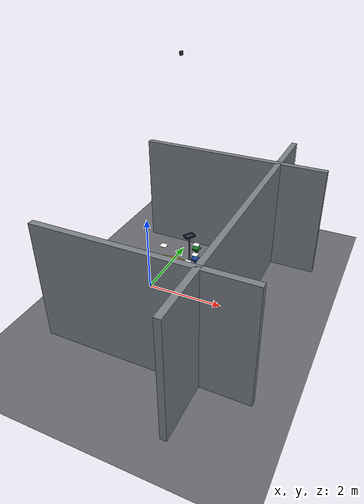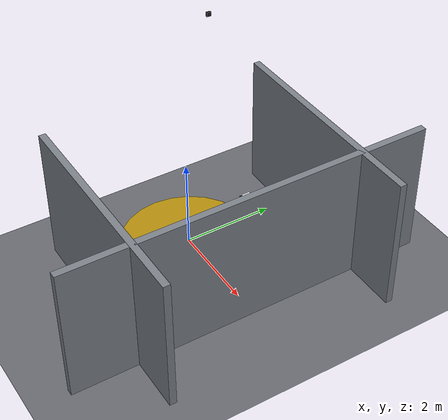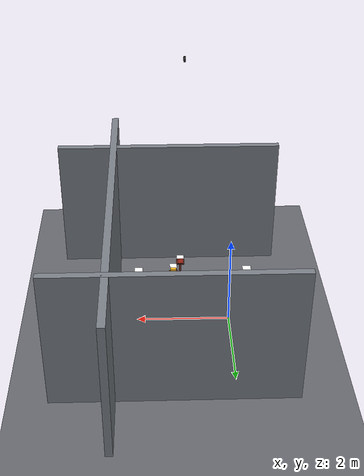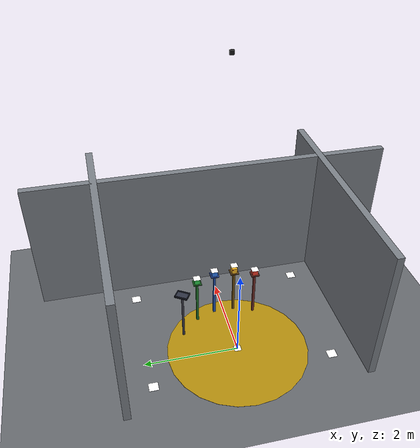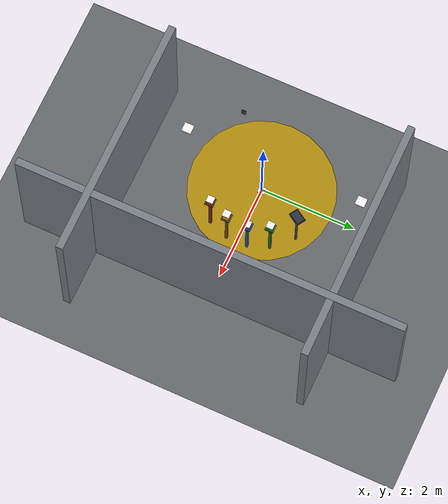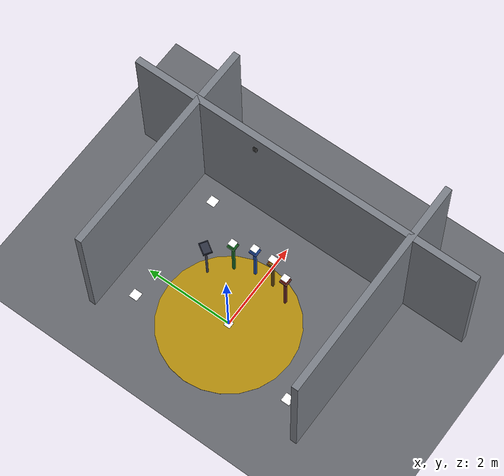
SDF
<?xml version="1.0" ?>
<sdf version="1.8">
  <world name="inventory_world">

    <physics name="fast" type="ignored">
      <max_step_size>0.004</max_step_size>
      <real_time_factor>1.0</real_time_factor>
      <real_time_update_rate>250</real_time_update_rate>
    </physics>

    <plugin filename="gz-sim-physics-system"           name="gz::sim::systems::Physics"/>
    <plugin filename="gz-sim-user-commands-system"     name="gz::sim::systems::UserCommands"/>
    <plugin filename="gz-sim-scene-broadcaster-system" name="gz::sim::systems::SceneBroadcaster"/>
    <plugin filename="gz-sim-contact-system"           name="gz::sim::systems::Contact"/>
    <plugin filename="gz-sim-sensors-system"           name="gz::sim::systems::Sensors">
      <render_engine>ogre2</render_engine>
    </plugin>

    <scene>
      <ambient>1.0 1.0 1.0 1</ambient>
      <background>0.15 0.17 0.21 1</background>
      <shadows>false</shadows>
      <grid>false</grid>
    </scene>

    <light name="sun_top" type="directional">
      <cast_shadows>false</cast_shadows><pose>0 0 10 0 0 0</pose>
      <diffuse>1.0 1.0 1.0 1</diffuse><specular>0.1 0.1 0.1 1</specular>
      <direction>0 0 -1</direction><intensity>1.5</intensity>
    </light>
    <light name="fill_front" type="directional">
      <cast_shadows>false</cast_shadows><pose>0 0 6 0 0.5 0</pose>
      <diffuse>0.8 0.8 0.8 1</diffuse><specular>0 0 0 1</specular>
      <direction>1 0 -1</direction>
    </light>
    <light name="fill_arm" type="directional">
      <cast_shadows>false</cast_shadows><pose>-1 0 4 0 0.5 0</pose>
      <diffuse>0.6 0.6 0.6 1</diffuse><specular>0 0 0 1</specular>
      <direction>1 0 -1</direction>
    </light>

    <!-- ═══ CAMERA 5.0 m ═══════════════════════════════════════════ -->
    <model name="overhead_camera_mount">
      <static>true</static><pose>1.0 0 6.0 0 1.5707963 0</pose>
      <link name="link">
        <visual name="body">
          <geometry><box><size>0.08 0.08 0.04</size></box></geometry>
          <material><ambient>0.1 0.1 0.1 1</ambient></material>
        </visual>
        <sensor name="overhead_cam" type="camera">
          <camera>
            <horizontal_fov>1.3963</horizontal_fov>
            <image><width>1280</width><height>720</height><format>R8G8B8</format></image>
            <clip><near>0.1</near><far>30.0</far></clip>
            <distortion><k1>0</k1><k2>0</k2><k3>0</k3><p1>0</p1><p2>0</p2></distortion>
          </camera>
          <always_on>1</always_on><update_rate>20</update_rate>
          <visualize>false</visualize><topic>/gz/camera/image</topic>
        </sensor>
      </link>
    </model>

    <!-- ═══ REFERENCE MARKERS (IDs 1-4, 200×200 mm) ═══════════════ -->
    <model name="aruco_ref_1"><static>true</static><pose>-0.60 -1.90 0.002 0 0 0</pose>
      <link name="link"><visual name="v"><cast_shadows>false</cast_shadows>
        <geometry><box><size>0.20 0.20 0.003</size></box></geometry>
        <material><ambient>1 1 1 1</ambient><diffuse>1 1 1 1</diffuse><specular>0 0 0 1</specular>
          <pbr><metal><albedo_map>model://dexter_description/textures/aruco_1.png</albedo_map>
            <metalness>0.0</metalness><roughness>1.0</roughness></metal></pbr>
        </material></visual></link></model>

    <model name="aruco_ref_2"><static>true</static><pose>2.00 -1.90 0.002 0 0 0</pose>
      <link name="link"><visual name="v"><cast_shadows>false</cast_shadows>
        <geometry><box><size>0.20 0.20 0.003</size></box></geometry>
        <material><ambient>1 1 1 1</ambient><diffuse>1 1 1 1</diffuse><specular>0 0 0 1</specular>
          <pbr><metal><albedo_map>model://dexter_description/textures/aruco_2.png</albedo_map>
            <metalness>0.0</metalness><roughness>1.0</roughness></metal></pbr>
        </material></visual></link></model>

    <model name="aruco_ref_3"><static>true</static><pose>-0.60 1.90 0.002 0 0 0</pose>
      <link name="link"><visual name="v"><cast_shadows>false</cast_shadows>
        <geometry><box><size>0.20 0.20 0.003</size></box></geometry>
        <material><ambient>1 1 1 1</ambient><diffuse>1 1 1 1</diffuse><specular>0 0 0 1</specular>
          <pbr><metal><albedo_map>model://dexter_description/textures/aruco_3.png</albedo_map>
            <metalness>0.0</metalness><roughness>1.0</roughness></metal></pbr>
        </material></visual></link></model>

    <model name="aruco_ref_4"><static>true</static><pose>2.00 1.90 0.002 0 0 0</pose>
      <link name="link"><visual name="v"><cast_shadows>false</cast_shadows>
        <geometry><box><size>0.20 0.20 0.003</size></box></geometry>
        <material><ambient>1 1 1 1</ambient><diffuse>1 1 1 1</diffuse><specular>0 0 0 1</specular>
          <pbr><metal><albedo_map>model://dexter_description/textures/aruco_4.png</albedo_map>
            <metalness>0.0</metalness><roughness>1.0</roughness></metal></pbr>
        </material></visual></link></model>

    <!-- ═══ ARM BASE floor marker (ID 5) ═══════════════════════════ -->
    <model name="aruco_arm_base_5"><static>true</static><pose>0.0 0.0 0.002 0 0 0</pose>
      <link name="link"><visual name="v"><cast_shadows>false</cast_shadows>
        <geometry><box><size>0.15 0.15 0.003</size></box></geometry>
        <material><ambient>1 1 1 1</ambient><diffuse>1 1 1 1</diffuse><specular>0 0 0 1</specular>
          <pbr><metal><albedo_map>model://dexter_description/textures/aruco_5.png</albedo_map>
            <metalness>0.0</metalness><roughness>1.0</roughness></metal></pbr>
        </material></visual></link></model>

    <!-- ═══ BOX-TOP MARKERS (IDs 10-13, 150×150 mm) ═══════════════ -->
    <model name="aruco_box_10"><static>true</static><pose>1.048 -0.642 1.218 0 0 0</pose>
      <link name="link"><visual name="v"><cast_shadows>false</cast_shadows>
        <geometry><box><size>0.15 0.15 0.002</size></box></geometry>
        <material><ambient>1 1 1 1</ambient><diffuse>1 1 1 1</diffuse><specular>0 0 0 1</specular>
          <pbr><metal><albedo_map>model://dexter_description/textures/aruco_10.png</albedo_map>
            <metalness>0.0</metalness><roughness>1.0</roughness></metal></pbr>
        </material></visual></link></model>

    <model name="aruco_box_11"><static>true</static><pose>1.209 -0.220 1.280 0 0 0</pose>
      <link name="link"><visual name="v"><cast_shadows>false</cast_shadows>
        <geometry><box><size>0.15 0.15 0.002</size></box></geometry>
        <material><ambient>1 1 1 1</ambient><diffuse>1 1 1 1</diffuse><specular>0 0 0 1</specular>
          <pbr><metal><albedo_map>model://dexter_description/textures/aruco_11.png</albedo_map>
            <metalness>0.0</metalness><roughness>1.0</roughness></metal></pbr>
        </material></visual></link></model>

    <model name="aruco_box_12"><static>true</static><pose>1.209 0.220 1.218 0 0 0</pose>
      <link name="link"><visual name="v"><cast_shadows>false</cast_shadows>
        <geometry><box><size>0.15 0.15 0.002</size></box></geometry>
        <material><ambient>1 1 1 1</ambient><diffuse>1 1 1 1</diffuse><specular>0 0 0 1</specular>
          <pbr><metal><albedo_map>model://dexter_description/textures/aruco_12.png</albedo_map>
            <metalness>0.0</metalness><roughness>1.0</roughness></metal></pbr>
        </material></visual></link></model>

    <model name="aruco_box_13"><static>true</static><pose>1.048 0.642 1.218 0 0 0</pose>
      <link name="link"><visual name="v"><cast_shadows>false</cast_shadows>
        <geometry><box><size>0.15 0.15 0.002</size></box></geometry>
        <material><ambient>1 1 1 1</ambient><diffuse>1 1 1 1</diffuse><specular>0 0 0 1</specular>
          <pbr><metal><albedo_map>model://dexter_description/textures/aruco_13.png</albedo_map>
            <metalness>0.0</metalness><roughness>1.0</roughness></metal></pbr>
        </material></visual></link></model>

    <!-- ═══ FLOOR ═══════════════════════════════════════════════════ -->
    <model name="warehouse_floor"><static>true</static><pose>0 0 0 0 0 0</pose>
      <link name="link">
        <collision name="col"><geometry><plane><normal>0 0 1</normal><size>10 10</size></plane></geometry></collision>
        <visual name="vis"><geometry><plane><normal>0 0 1</normal><size>10 10</size></plane></geometry>
          <material><ambient>0.30 0.31 0.33 1</ambient><diffuse>0.40 0.41 0.43 1</diffuse></material>
        </visual>
      </link>
    </model>
    <model name="safety_zone"><static>true</static><pose>0 0 0.001 0 0 0</pose>
      <link name="link"><visual name="vis">
        <geometry><cylinder><radius>1.5</radius><length>0.002</length></cylinder></geometry>
        <material><ambient>0.6 0.45 0.0 1</ambient><diffuse>0.7 0.55 0.05 1</diffuse></material>
      </visual></link>
    </model>

    <!-- ═══ PEDESTALS (with collision so boxes rest on them) ═══════════ -->
    <model name="pedestal_slot0"><static>true</static><pose>1.048 -0.642 0 0 0 0</pose><link name="link">
      <collision name="post_col"><pose>0 0 0.538 0 0 0</pose><geometry><box><size>0.05 0.05 1.076</size></box></geometry></collision>
      <collision name="top_col"><pose>0 0 1.086 0 0 0</pose><geometry><box><size>0.18 0.18 0.020</size></box></geometry></collision>
      <visual name="post"><pose>0 0 0.538 0 0 0</pose><geometry><box><size>0.05 0.05 1.076</size></box></geometry>
        <material><ambient>0.35 0.14 0.12 1</ambient><diffuse>0.45 0.18 0.15 1</diffuse></material></visual>
      <visual name="top"><pose>0 0 1.086 0 0 0</pose><geometry><box><size>0.18 0.18 0.020</size></box></geometry>
        <material><ambient>0.28 0.12 0.10 1</ambient><diffuse>0.36 0.16 0.13 1</diffuse></material></visual>
    </link></model>
    <model name="pedestal_slot1"><static>true</static><pose>1.209 -0.220 0 0 0 0</pose><link name="link">
      <collision name="post_col"><pose>0 0 0.538 0 0 0</pose><geometry><box><size>0.05 0.05 1.076</size></box></geometry></collision>
      <collision name="top_col"><pose>0 0 1.086 0 0 0</pose><geometry><box><size>0.18 0.18 0.020</size></box></geometry></collision>
      <visual name="post"><pose>0 0 0.538 0 0 0</pose><geometry><box><size>0.05 0.05 1.076</size></box></geometry>
        <material><ambient>0.35 0.24 0.06 1</ambient><diffuse>0.45 0.32 0.08 1</diffuse></material></visual>
      <visual name="top"><pose>0 0 1.086 0 0 0</pose><geometry><box><size>0.18 0.18 0.020</size></box></geometry>
        <material><ambient>0.28 0.18 0.05 1</ambient><diffuse>0.36 0.24 0.07 1</diffuse></material></visual>
    </link></model>
    <model name="pedestal_slot2"><static>true</static><pose>1.209 0.220 0 0 0 0</pose><link name="link">
      <collision name="post_col"><pose>0 0 0.538 0 0 0</pose><geometry><box><size>0.05 0.05 1.076</size></box></geometry></collision>
      <collision name="top_col"><pose>0 0 1.086 0 0 0</pose><geometry><box><size>0.18 0.18 0.020</size></box></geometry></collision>
      <visual name="post"><pose>0 0 0.538 0 0 0</pose><geometry><box><size>0.05 0.05 1.076</size></box></geometry>
        <material><ambient>0.10 0.25 0.55 1</ambient><diffuse>0.14 0.33 0.68 1</diffuse></material></visual>
      <visual name="top"><pose>0 0 1.086 0 0 0</pose><geometry><box><size>0.18 0.18 0.020</size></box></geometry>
        <material><ambient>0.08 0.18 0.42 1</ambient><diffuse>0.12 0.24 0.55 1</diffuse></material></visual>
    </link></model>
    <model name="pedestal_slot3"><static>true</static><pose>1.048 0.642 0 0 0 0</pose><link name="link">
      <collision name="post_col"><pose>0 0 0.538 0 0 0</pose><geometry><box><size>0.05 0.05 1.076</size></box></geometry></collision>
      <collision name="top_col"><pose>0 0 1.086 0 0 0</pose><geometry><box><size>0.18 0.18 0.020</size></box></geometry></collision>
      <visual name="post"><pose>0 0 0.538 0 0 0</pose><geometry><box><size>0.05 0.05 1.076</size></box></geometry>
        <material><ambient>0.08 0.35 0.12 1</ambient><diffuse>0.12 0.45 0.16 1</diffuse></material></visual>
      <visual name="top"><pose>0 0 1.086 0 0 0</pose><geometry><box><size>0.18 0.18 0.020</size></box></geometry>
        <material><ambient>0.06 0.25 0.09 1</ambient><diffuse>0.10 0.34 0.12 1</diffuse></material></visual>
    </link></model>

    <!-- ═══ BOXES (dynamic, with collision and inertia for physics) ════ -->
    <model name="box_slot0"><static>false</static><pose>1.048 -0.642 1.156 0 0 0</pose>
      <link name="link">
        <inertial>
          <mass>0.5</mass>
          <inertia><ixx>0.001</ixx><iyy>0.001</iyy><izz>0.001</izz></inertia>
        </inertial>
        <collision name="col"><geometry><box><size>0.12 0.12 0.12</size></box></geometry>
          <surface><friction><ode><mu>1.0</mu><mu2>1.0</mu2></ode></friction></surface>
        </collision>
        <visual name="body"><geometry><box><size>0.12 0.12 0.12</size></box></geometry>
          <material><ambient>0.85 0.18 0.12 1</ambient><diffuse>0.95 0.25 0.17 1</diffuse></material></visual>
      </link>
    </model>

    <model name="box_slot1"><static>false</static><pose>1.209 -0.220 1.156 0 0 0</pose>
      <link name="link">
        <inertial>
          <mass>0.5</mass>
          <inertia><ixx>0.001</ixx><iyy>0.001</iyy><izz>0.001</izz></inertia>
        </inertial>
        <collision name="col"><geometry><box><size>0.12 0.12 0.12</size></box></geometry>
          <surface><friction><ode><mu>1.0</mu><mu2>1.0</mu2></ode></friction></surface>
        </collision>
        <visual name="body"><geometry><box><size>0.12 0.12 0.12</size></box></geometry>
          <material><ambient>0.88 0.60 0.09 1</ambient><diffuse>0.98 0.73 0.13 1</diffuse></material></visual>
        <visual name="expiry"><pose>-0.063 0.038 0.048 0 0 0</pose><geometry><sphere><radius>0.013</radius></sphere></geometry>
          <material><ambient>0.95 0.08 0.08 1</ambient><diffuse>1 0.12 0.12 1</diffuse></material></visual>
      </link>
    </model>

    <model name="box_slot2"><static>false</static><pose>1.209 0.220 1.156 0 0 0</pose>
      <link name="link">
        <inertial>
          <mass>0.5</mass>
          <inertia><ixx>0.001</ixx><iyy>0.001</iyy><izz>0.001</izz></inertia>
        </inertial>
        <collision name="col"><geometry><box><size>0.12 0.12 0.12</size></box></geometry>
          <surface><friction><ode><mu>1.0</mu><mu2>1.0</mu2></ode></friction></surface>
        </collision>
        <visual name="body"><geometry><box><size>0.12 0.12 0.12</size></box></geometry>
          <material><ambient>0.14 0.38 0.82 1</ambient><diffuse>0.20 0.50 0.95 1</diffuse></material></visual>
      </link>
    </model>

    <model name="box_slot3"><static>false</static><pose>1.048 0.642 1.156 0 0 0</pose>
      <link name="link">
        <inertial>
          <mass>0.5</mass>
          <inertia><ixx>0.001</ixx><iyy>0.001</iyy><izz>0.001</izz></inertia>
        </inertial>
        <collision name="col"><geometry><box><size>0.12 0.12 0.12</size></box></geometry>
          <surface><friction><ode><mu>1.0</mu><mu2>1.0</mu2></ode></friction></surface>
        </collision>
        <visual name="body"><geometry><box><size>0.12 0.12 0.12</size></box></geometry>
          <material><ambient>0.12 0.66 0.22 1</ambient><diffuse>0.18 0.80 0.30 1</diffuse></material></visual>
        <visual name="new_dot"><pose>-0.063 -0.038 0.048 0 0 0</pose><geometry><sphere><radius>0.010</radius></sphere></geometry>
          <material><ambient>0.12 0.85 0.22 1</ambient><diffuse>0.16 1.0 0.28 1</diffuse></material></visual>
      </link>
    </model>

    <!-- ═══ DISPATCH TRAY ════════════════════════════════════════════ -->
    <model name="dispatch_tray"><static>true</static><pose>0.664 1.034 1.147 0 0 1.0</pose><link name="link">
      <visual name="base"><geometry><box><size>0.28 0.20 0.018</size></box></geometry>
        <material><ambient>0.12 0.14 0.18 1</ambient><diffuse>0.18 0.20 0.26 1</diffuse></material></visual>
      <visual name="rim_f"><pose>0.13 0 0.022 0 0 0</pose><geometry><box><size>0.014 0.20 0.028</size></box></geometry>
        <material><ambient>0.12 0.14 0.18 1</ambient><diffuse>0.18 0.20 0.26 1</diffuse></material></visual>
      <visual name="rim_b"><pose>-0.13 0 0.022 0 0 0</pose><geometry><box><size>0.014 0.20 0.028</size></box></geometry>
        <material><ambient>0.12 0.14 0.18 1</ambient><diffuse>0.18 0.20 0.26 1</diffuse></material></visual>
      <visual name="rim_l"><pose>0 0.09 0.022 0 0 0</pose><geometry><box><size>0.28 0.014 0.028</size></box></geometry>
        <material><ambient>0.12 0.14 0.18 1</ambient><diffuse>0.18 0.20 0.26 1</diffuse></material></visual>
      <visual name="rim_r"><pose>0 -0.09 0.022 0 0 0</pose><geometry><box><size>0.28 0.014 0.028</size></box></geometry>
        <material><ambient>0.12 0.14 0.18 1</ambient><diffuse>0.18 0.20 0.26 1</diffuse></material></visual>
    </link></model>
    <model name="dispatch_stand"><static>true</static><pose>0.664 1.034 0.573 0 0 0</pose>
      <link name="link"><visual name="pole"><geometry><cylinder><radius>0.025</radius><length>1.147</length></cylinder></geometry>
        <material><ambient>0.15 0.15 0.18 1</ambient><diffuse>0.22 0.22 0.26 1</diffuse></material></visual></link></model>

    <!-- ═══ WALLS ════════════════════════════════════════════════════ -->
    <model name="back_wall"><static>true</static><pose>2.5 0 1.5 0 0 0</pose>
      <link name="link"><visual name="v"><geometry><box><size>0.15 8 3.0</size></box></geometry>
        <material><ambient>0.38 0.40 0.43 1</ambient><diffuse>0.48 0.50 0.53 1</diffuse></material></visual></link></model>
    <model name="wall_left"><static>true</static><pose>1.25 -2.5 1.5 0 0 0</pose>
      <link name="link"><visual name="v"><geometry><box><size>5 0.15 3.0</size></box></geometry>
        <material><ambient>0.38 0.40 0.43 1</ambient><diffuse>0.48 0.50 0.53 1</diffuse></material></visual></link></model>
    <model name="wall_right"><static>true</static><pose>1.25 2.5 1.5 0 0 0</pose>
      <link name="link"><visual name="v"><geometry><box><size>5 0.15 3.0</size></box></geometry>
        <material><ambient>0.38 0.40 0.43 1</ambient><diffuse>0.48 0.50 0.53 1</diffuse></material></visual></link></model>

  </world>
</sdf>
